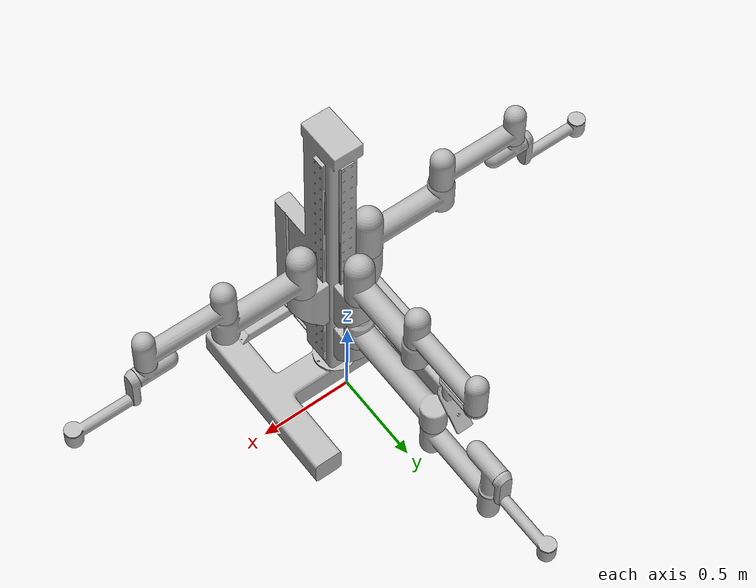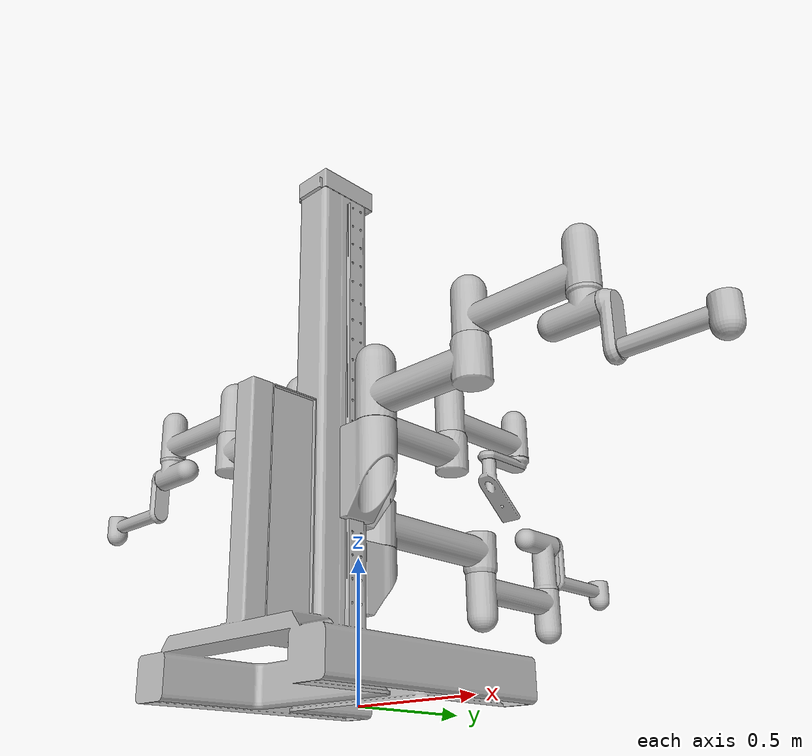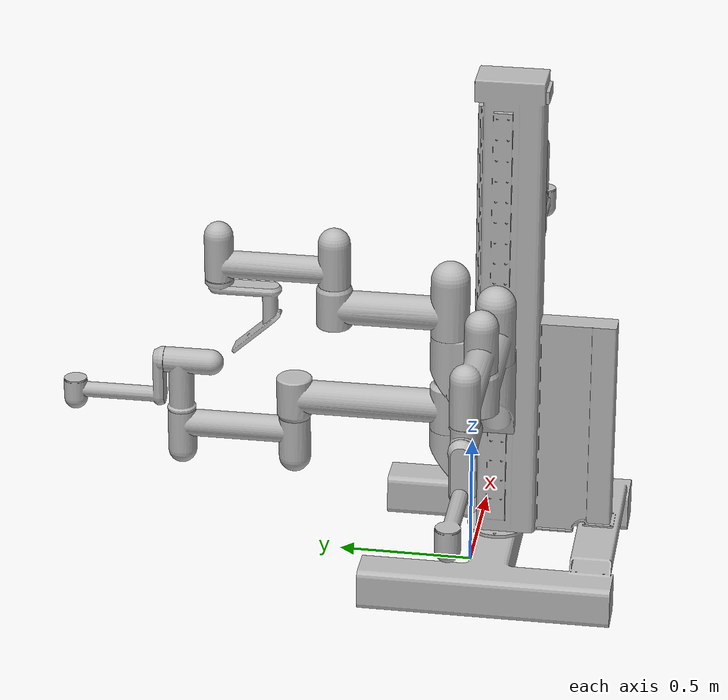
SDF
<sdf version='1.6'>
  <model name='suj'>
    <link name='base_link'>
      <pose>0 0 0.167458 0 -0 0</pose>
      <inertial>
        <pose>3.41426e-07 -0.163433 0.552458 0 -0 0</pose>
        <mass>251.331</mass>
        <inertia>
          <ixx>116.092</ixx>
          <ixy>-5.29792e-06</ixy>
          <ixz>3.94602e-05</ixz>
          <iyy>116.786</iyy>
          <iyz>-2.7945</iyz>
          <izz>20.7205</izz>
        </inertia>
      </inertial>
      <collision name='base_link_collision'>
        <pose>0 0 0 0 -0 0</pose>
        <geometry>
          <mesh>
            <scale>1 1 1</scale>
            <uri>model://cart/meshes/base_link.STL</uri>
          </mesh>
        </geometry>
      </collision>
      <visual name='base_link_visual'>
        <pose>0 0 0 0 -0 0</pose>
        <geometry>
          <mesh>
            <scale>1 1 1</scale>
            <uri>model://cart/meshes/base_link.STL</uri>
          </mesh>
        </geometry>
      </visual>
      <velocity_decay>
        <linear>0</linear>
        <angular>0</angular>
      </velocity_decay>
    </link>
    <joint name='base_joint' type='fixed'>
      <child>base_link</child>
      <parent>world</parent>
    </joint>
    <link name='suj_psm2_L0'>
      <pose>0.1912 -0.1016 0.928558 -3.14159 -0 3.14159</pose>
      <inertial>
        <pose>0.05684 4.20187e-07 0.148467 0 -0 0</pose>
        <mass>8.19045</mass>
        <inertia>
          <ixx>0.0849399</ixx>
          <ixy>-2.62415e-07</ixy>
          <ixz>-0.00950409</ixz>
          <iyy>0.0840388</iyy>
          <iyz>-7.34497e-07</iyz>
          <izz>0.0337579</izz>
        </inertia>
      </inertial>
      <collision name='suj_psm2_L0_collision'>
        <pose>0 0 0 0 -0 0</pose>
        <geometry>
          <mesh>
            <scale>1 1 1</scale>
            <uri>model://cart/meshes/suj_psm2_L0.STL</uri>
          </mesh>
        </geometry>
      </collision>
      <visual name='suj_psm2_L0_visual'>
        <pose>0 0 0 0 -0 0</pose>
        <geometry>
          <mesh>
            <scale>1 1 1</scale>
            <uri>model://cart/meshes/suj_psm2_L0.STL</uri>
          </mesh>
        </geometry>
      </visual>
      <velocity_decay>
        <linear>0</linear>
        <angular>0</angular>
      </velocity_decay>
    </link>
    <joint name='suj_psm2_J0' type='prismatic'>
      <child>suj_psm2_L0</child>
      <parent>base_link</parent>
      <axis>
        <xyz>0 0 -1</xyz>
        <limit>
          <lower>-0.3798</lower>
          <upper>0.8425</upper>
          <effort>5000</effort>
          <velocity>50</velocity>
        </limit>
        <dynamics>
          <damping>0.2</damping>
        </dynamics>
      </axis>
    </joint>
    <link name='suj_psm2_L1'>
      <pose>0.1912 -0.1016 0.928558 3.14159 3.23109e-15 1.5708</pose>
      <inertial>
        <pose>-2.39047e-06 0.181423 -0.108874 0 -0 0</pose>
        <mass>4.28515</mass>
        <inertia>
          <ixx>0.165299</ixx>
          <ixy>8.05521e-07</ixy>
          <ixz>1.12357e-07</ixz>
          <iyy>0.0318879</iyy>
          <iyz>-0.0216382</iyz>
          <izz>0.151812</izz>
        </inertia>
      </inertial>
      <collision name='suj_psm2_L1_collision'>
        <pose>0 0 0 0 -0 0</pose>
        <geometry>
          <mesh>
            <scale>1 1 1</scale>
            <uri>model://cart/meshes/suj_psm2_L1.STL</uri>
          </mesh>
        </geometry>
      </collision>
      <visual name='suj_psm2_L1_visual'>
        <pose>0 0 0 0 -0 0</pose>
        <geometry>
          <mesh>
            <scale>1 1 1</scale>
            <uri>model://cart/meshes/suj_psm2_L1.STL</uri>
          </mesh>
        </geometry>
      </visual>
      <velocity_decay>
        <linear>0</linear>
        <angular>0</angular>
      </velocity_decay>
    </link>
    <joint name='suj_psm2_J1' type='revolute'>
      <child>suj_psm2_L1</child>
      <parent>suj_psm2_L0</parent>
      <axis>
        <xyz>1.0058e-29 3.23109e-15 1</xyz>
        <limit>
          <lower>-3.14159</lower>
          <upper>3.14159</upper>
        </limit>
        <dynamics/>
      </axis>
    </joint>
    <link name='suj_psm2_L2'>
      <pose>0.623 -0.1016 1.09981 -6.46218e-15 -2.33033e-29 -1.03251e-14</pose>
      <inertial>
        <pose>0.20892 -5.98682e-06 0.0907666 0 -0 0</pose>
        <mass>3.37391</mass>
        <inertia>
          <ixx>0.0170496</ixx>
          <ixy>1.14494e-06</ixy>
          <ixz>0.00102556</ixz>
          <iyy>0.122648</iyy>
          <iyz>-5.47957e-07</iyz>
          <izz>0.11478</izz>
        </inertia>
      </inertial>
      <collision name='suj_psm2_L2_collision'>
        <pose>0 0 0 0 -0 0</pose>
        <geometry>
          <mesh>
            <scale>1 1 1</scale>
            <uri>model://cart/meshes/suj_psm2_L2.STL</uri>
          </mesh>
        </geometry>
      </collision>
      <visual name='suj_psm2_L2_visual'>
        <pose>0 0 0 0 -0 0</pose>
        <geometry>
          <mesh>
            <scale>1 1 1</scale>
            <uri>model://cart/meshes/suj_psm2_L2.STL</uri>
          </mesh>
        </geometry>
      </visual>
      <velocity_decay>
        <linear>0</linear>
        <angular>0</angular>
      </velocity_decay>
    </link>
    <joint name='suj_psm2_J2' type='revolute'>
      <child>suj_psm2_L2</child>
      <parent>suj_psm2_L1</parent>
      <axis>
        <xyz>4.34192e-29 6.46218e-15 1</xyz>
        <limit>
          <lower>-3.14159</lower>
          <upper>3.14159</upper>
        </limit>
        <dynamics>
          <damping>0.2</damping>
        </dynamics>
      </axis>
    </joint>
    <link name='suj_psm2_L3'>
      <pose>1.0548 -0.1016 1.09981 -1.5708 -6.66134e-15 -1.5708</pose>
      <inertial>
        <pose>-7.80457e-07 0.0671938 -0.0457966 0 -0 0</pose>
        <mass>0.955411</mass>
        <inertia>
          <ixx>0.0050224</ixx>
          <ixy>1.37715e-08</ixy>
          <ixz>6.06907e-08</ixz>
          <iyy>0.00485367</iyy>
          <iyz>0.000256157</iyz>
          <izz>0.00220603</izz>
        </inertia>
      </inertial>
      <collision name='suj_psm2_L3_collision'>
        <pose>0 0 0 0 -0 0</pose>
        <geometry>
          <mesh>
            <scale>1 1 1</scale>
            <uri>model://cart/meshes/suj_psm2_L3.STL</uri>
          </mesh>
        </geometry>
      </collision>
      <visual name='suj_psm2_L3_visual'>
        <pose>0 0 0 0 -0 0</pose>
        <geometry>
          <mesh>
            <scale>1 1 1</scale>
            <uri>model://cart/meshes/suj_psm2_L3.STL</uri>
          </mesh>
        </geometry>
      </visual>
      <velocity_decay>
        <linear>0</linear>
        <angular>0</angular>
      </velocity_decay>
    </link>
    <joint name='suj_psm2_J3' type='revolute'>
      <child>suj_psm2_L3</child>
      <parent>suj_psm2_L2</parent>
      <axis>
        <xyz>0 1 0</xyz>
        <limit>
          <lower>-3.14159</lower>
          <upper>3.14159</upper>
        </limit>
        <dynamics>
          <damping>0.2</damping>
        </dynamics>
      </axis>
    </joint>
    <link name='suj_psm2_L4'>
      <pose>1.1158 -0.1016 1.02676 -3.14159 9.85853e-15 1.5708</pose>
      <inertial>
        <pose>4.48122e-08 0.13369 0.106531 0 -0 0</pose>
        <mass>3.17073</mass>
        <inertia>
          <ixx>0.0814805</ixx>
          <ixy>-2.272e-08</ixy>
          <ixz>-1.15333e-09</ixz>
          <iyy>0.0179293</iyy>
          <iyz>-0.0218807</iyz>
          <izz>0.0668099</izz>
        </inertia>
      </inertial>
      <collision name='suj_psm2_L4_collision'>
        <pose>0 0 0 0 -0 0</pose>
        <geometry>
          <mesh>
            <scale>1 1 1</scale>
            <uri>model://cart/meshes/suj_psm2_L4.STL</uri>
          </mesh>
        </geometry>
      </collision>
      <visual name='suj_psm2_L4_visual'>
        <pose>0 0 0 0 -0 0</pose>
        <geometry>
          <mesh>
            <scale>1 1 1</scale>
            <uri>model://cart/meshes/suj_psm2_L4.STL</uri>
          </mesh>
        </geometry>
      </visual>
      <velocity_decay>
        <linear>0</linear>
        <angular>0</angular>
      </velocity_decay>
    </link>
    <joint name='suj_psm2_J4' type='revolute'>
      <child>suj_psm2_L4</child>
      <parent>suj_psm2_L3</parent>
      <axis>
        <xyz>0 1 0</xyz>
        <limit>
          <lower>-3.14159</lower>
          <upper>3.14159</upper>
        </limit>
        <dynamics>
          <damping>0.2</damping>
        </dynamics>
      </axis>
    </joint>
    <link name='suj_ecm_L0'>
      <pose>0 0.0896 0.928558 3.14159 -3.41872e-16 -1.5708</pose>
      <inertial>
        <pose>0.05684 4.20187e-07 0.148467 0 -0 0</pose>
        <mass>8.19045</mass>
        <inertia>
          <ixx>0.0849399</ixx>
          <ixy>-2.62415e-07</ixy>
          <ixz>-0.00950409</ixz>
          <iyy>0.0840388</iyy>
          <iyz>-7.34497e-07</iyz>
          <izz>0.0337579</izz>
        </inertia>
      </inertial>
      <collision name='suj_ecm_L0_collision'>
        <pose>0 0 0 0 -0 0</pose>
        <geometry>
          <mesh>
            <scale>1 1 1</scale>
            <uri>model://cart/meshes/suj_ecm_L0.STL</uri>
          </mesh>
        </geometry>
      </collision>
      <visual name='suj_ecm_L0_visual'>
        <pose>0 0 0 0 -0 0</pose>
        <geometry>
          <mesh>
            <scale>1 1 1</scale>
            <uri>model://cart/meshes/suj_ecm_L0.STL</uri>
          </mesh>
        </geometry>
      </visual>
      <velocity_decay>
        <linear>0</linear>
        <angular>0</angular>
      </velocity_decay>
    </link>
    <joint name='suj_ecm_J0' type='prismatic'>
      <child>suj_ecm_L0</child>
      <parent>base_link</parent>
      <axis>
        <xyz>0 0 -1</xyz>
        <limit>
          <lower>-0.3798</lower>
          <upper>0.8425</upper>
          <effort>5000</effort>
          <velocity>50</velocity>
        </limit>
        <dynamics>
          <damping>0.2</damping>
        </dynamics>
      </axis>
    </joint>
    <link name='suj_ecm_L1'>
      <pose>0 0.0896 0.928558 -2.88922e-15 -3.23109e-15 3.14159</pose>
      <inertial>
        <pose>-2.39047e-06 -0.181423 0.108874 0 -0 0</pose>
        <mass>4.28515</mass>
        <inertia>
          <ixx>0.165299</ixx>
          <ixy>-8.05521e-07</ixy>
          <ixz>-1.12357e-07</ixz>
          <iyy>0.0318879</iyy>
          <iyz>-0.0216382</iyz>
          <izz>0.151812</izz>
        </inertia>
      </inertial>
      <collision name='suj_ecm_L1_collision'>
        <pose>0 0 0 0 -0 0</pose>
        <geometry>
          <mesh>
            <scale>1 1 1</scale>
            <uri>model://cart/meshes/suj_ecm_L1.STL</uri>
          </mesh>
        </geometry>
      </collision>
      <visual name='suj_ecm_L1_visual'>
        <pose>0 0 0 0 -0 0</pose>
        <geometry>
          <mesh>
            <scale>1 1 1</scale>
            <uri>model://cart/meshes/suj_ecm_L1.STL</uri>
          </mesh>
        </geometry>
      </visual>
      <velocity_decay>
        <linear>0</linear>
        <angular>0</angular>
      </velocity_decay>
    </link>
    <joint name='suj_ecm_J1' type='revolute'>
      <child>suj_ecm_L1</child>
      <parent>suj_ecm_L0</parent>
      <axis>
        <xyz>3.23109e-15 -2.88922e-15 1</xyz>
        <limit>
          <lower>-3.14159</lower>
          <upper>3.14159</upper>
        </limit>
        <dynamics>
          <damping>0.2</damping>
        </dynamics>
      </axis>
    </joint>
    <link name='suj_ecm_L2'>
      <pose>3.66939e-15 0.5214 1.09981 -3.14159 -2.88922e-15 1.5708</pose>
      <inertial>
        <pose>0.20892 5.98682e-06 -0.0907666 0 -0 0</pose>
        <mass>3.37391</mass>
        <inertia>
          <ixx>0.0170496</ixx>
          <ixy>-1.14494e-06</ixy>
          <ixz>-0.00102556</ixz>
          <iyy>0.122648</iyy>
          <iyz>-5.47957e-07</iyz>
          <izz>0.11478</izz>
        </inertia>
      </inertial>
      <collision name='suj_ecm_L2_collision'>
        <pose>0 0 0 0 -0 0</pose>
        <geometry>
          <mesh>
            <scale>1 1 1</scale>
            <uri>model://cart/meshes/suj_ecm_L2.STL</uri>
          </mesh>
        </geometry>
      </collision>
      <visual name='suj_ecm_L2_visual'>
        <pose>0 0 0 0 -0 0</pose>
        <geometry>
          <mesh>
            <scale>1 1 1</scale>
            <uri>model://cart/meshes/suj_ecm_L2.STL</uri>
          </mesh>
        </geometry>
      </visual>
      <velocity_decay>
        <linear>0</linear>
        <angular>0</angular>
      </velocity_decay>
    </link>
    <joint name='suj_ecm_J2' type='revolute'>
      <child>suj_ecm_L2</child>
      <parent>suj_ecm_L1</parent>
      <axis>
        <xyz>-2.18909e-29 -2.88922e-15 1</xyz>
        <limit>
          <lower>-3.14159</lower>
          <upper>3.14159</upper>
        </limit>
        <dynamics>
          <damping>0.2</damping>
        </dynamics>
      </axis>
    </joint>
    <link name='suj_ecm_L3'>
      <pose>8.31437e-15 0.9532 1.04781 -1.5708 2.94209e-15 -1.5708</pose>
      <inertial>
        <pose>0.101751 0.0259124 -9.327e-08 0 -0 0</pose>
        <mass>3.45916</mass>
        <inertia>
          <ixx>0.0229633</ixx>
          <ixy>-0.0059561</ixy>
          <ixz>3.34205e-08</ixz>
          <iyy>0.0229722</iyy>
          <iyz>2.42316e-08</iyz>
          <izz>0.0422114</izz>
        </inertia>
      </inertial>
      <collision name='suj_ecm_L3_collision'>
        <pose>0 0 0 0 -0 0</pose>
        <geometry>
          <mesh>
            <scale>1 1 1</scale>
            <uri>model://cart/meshes/suj_ecm_L3.STL</uri>
          </mesh>
        </geometry>
      </collision>
      <visual name='suj_ecm_L3_visual'>
        <pose>0 0 0 0 -0 0</pose>
        <geometry>
          <mesh>
            <scale>1 1 1</scale>
            <uri>model://cart/meshes/suj_ecm_L3.STL</uri>
          </mesh>
        </geometry>
      </visual>
      <velocity_decay>
        <linear>0</linear>
        <angular>0</angular>
      </velocity_decay>
    </link>
    <joint name='suj_ecm_J3' type='revolute'>
      <child>suj_ecm_L3</child>
      <parent>suj_ecm_L2</parent>
      <axis>
        <xyz>0 1 0</xyz>
        <limit>
          <lower>-3.14159</lower>
          <upper>3.14159</upper>
        </limit>
        <dynamics>
          <damping>0.2</damping>
        </dynamics>
      </axis>
    </joint>
    <link name='suj_psm3_L0'>
      <pose>0 0.0896 0.548758 3.14159 -3.41872e-16 -1.5708</pose>
      <inertial>
        <pose>0.060211 -2.92607e-07 0.1132 0 -0 0</pose>
        <mass>6.04817</mass>
        <inertia>
          <ixx>0.0427518</ixx>
          <ixy>-6.0601e-07</ixy>
          <ixz>-0.00566678</ixz>
          <iyy>0.0405</iyy>
          <iyz>-5.59951e-07</iyz>
          <izz>0.0232273</izz>
        </inertia>
      </inertial>
      <collision name='suj_psm3_L0_collision'>
        <pose>0 0 0 0 -0 0</pose>
        <geometry>
          <mesh>
            <scale>1 1 1</scale>
            <uri>model://cart/meshes/suj_psm3_L0.STL</uri>
          </mesh>
        </geometry>
      </collision>
      <visual name='suj_psm3_L0_visual'>
        <pose>0 0 0 0 -0 0</pose>
        <geometry>
          <mesh>
            <scale>1 1 1</scale>
            <uri>model://cart/meshes/suj_psm3_L0.STL</uri>
          </mesh>
        </geometry>
      </visual>
      <velocity_decay>
        <linear>0</linear>
        <angular>0</angular>
      </velocity_decay>
    </link>
    <joint name='suj_psm3_J0' type='prismatic'>
      <child>suj_psm3_L0</child>
      <parent>base_link</parent>
      <axis>
        <xyz>0 0 -1</xyz>
        <limit>
          <lower>0</lower>
          <upper>1.2223</upper>
          <effort>5000</effort>
          <velocity>50</velocity>
        </limit>
        <dynamics>
          <damping>0.2</damping>
        </dynamics>
      </axis>
    </joint>
    <link name='suj_psm3_L1'>
      <pose>0 0.0896 0.548758 -2.88922e-15 -3.23109e-15 3.14159</pose>
      <inertial>
        <pose>-8.83879e-07 -0.269227 0.0974465 0 -0 0</pose>
        <mass>9.21434</mass>
        <inertia>
          <ixx>0.512543</ixx>
          <ixy>-1.12853e-06</ixy>
          <ixz>-1.98944e-07</ixz>
          <iyy>0.0466755</iyy>
          <iyz>-0.0223247</iyz>
          <izz>0.500776</izz>
        </inertia>
      </inertial>
      <collision name='suj_psm3_L1_collision'>
        <pose>0 0 0 0 -0 0</pose>
        <geometry>
          <mesh>
            <scale>1 1 1</scale>
            <uri>model://cart/meshes/suj_psm3_L1.STL</uri>
          </mesh>
        </geometry>
      </collision>
      <visual name='suj_psm3_L1_visual'>
        <pose>0 0 0 0 -0 0</pose>
        <geometry>
          <mesh>
            <scale>1 1 1</scale>
            <uri>model://cart/meshes/suj_psm3_L1.STL</uri>
          </mesh>
        </geometry>
      </visual>
      <velocity_decay>
        <linear>0</linear>
        <angular>0</angular>
      </velocity_decay>
    </link>
    <joint name='suj_psm3_J1' type='revolute'>
      <child>suj_psm3_L1</child>
      <parent>suj_psm3_L0</parent>
      <axis>
        <xyz>0 0 1</xyz>
        <limit>
          <lower>-3.14159</lower>
          <upper>3.14159</upper>
        </limit>
        <dynamics>
          <damping>0.2</damping>
        </dynamics>
      </axis>
    </joint>
    <link name='suj_psm3_L2'>
      <pose>4.21504e-15 0.6738 0.548508 -3.14159 -2.88922e-15 1.5708</pose>
      <inertial>
        <pose>0.20892 -5.98682e-06 0.0907666 0 -0 0</pose>
        <mass>3.37391</mass>
        <inertia>
          <ixx>0.0170496</ixx>
          <ixy>1.14494e-06</ixy>
          <ixz>0.00102556</ixz>
          <iyy>0.122648</iyy>
          <iyz>-5.47957e-07</iyz>
          <izz>0.11478</izz>
        </inertia>
      </inertial>
      <collision name='suj_psm3_L2_collision'>
        <pose>0 0 0 0 -0 0</pose>
        <geometry>
          <mesh>
            <scale>1 1 1</scale>
            <uri>model://cart/meshes/suj_psm3_L2.STL</uri>
          </mesh>
        </geometry>
      </collision>
      <visual name='suj_psm3_L2_visual'>
        <pose>0 0 0 0 -0 0</pose>
        <geometry>
          <mesh>
            <scale>1 1 1</scale>
            <uri>model://cart/meshes/suj_psm3_L2.STL</uri>
          </mesh>
        </geometry>
      </visual>
      <velocity_decay>
        <linear>0</linear>
        <angular>0</angular>
      </velocity_decay>
    </link>
    <joint name='suj_psm3_J2' type='revolute'>
      <child>suj_psm3_L2</child>
      <parent>suj_psm3_L1</parent>
      <axis>
        <xyz>0 0 1</xyz>
        <limit>
          <lower>-3.14159</lower>
          <upper>3.14159</upper>
        </limit>
        <dynamics/>
      </axis>
    </joint>
    <link name='suj_psm3_L3'>
      <pose>8.90573e-15 1.1056 0.548508 -1.5708 3.15253e-17 3.14159</pose>
      <inertial>
        <pose>-5.52738e-07 -0.14737 0.0299587 0 -0 0</pose>
        <mass>1.46017</mass>
        <inertia>
          <ixx>0.0128891</ixx>
          <ixy>-1.05508e-07</ixy>
          <ixz>2.68237e-08</ixz>
          <iyy>0.00658385</iyy>
          <iyz>0.00230089</iyz>
          <izz>0.00938096</izz>
        </inertia>
      </inertial>
      <collision name='suj_psm3_L3_collision'>
        <pose>0 0 0 0 -0 0</pose>
        <geometry>
          <mesh>
            <scale>1 1 1</scale>
            <uri>model://cart/meshes/suj_psm3_L3.STL</uri>
          </mesh>
        </geometry>
      </collision>
      <visual name='suj_psm3_L3_visual'>
        <pose>0 0 0 0 -0 0</pose>
        <geometry>
          <mesh>
            <scale>1 1 1</scale>
            <uri>model://cart/meshes/suj_psm3_L3.STL</uri>
          </mesh>
        </geometry>
      </visual>
      <velocity_decay>
        <linear>0</linear>
        <angular>0</angular>
      </velocity_decay>
    </link>
    <joint name='suj_psm3_J3' type='revolute'>
      <child>suj_psm3_L3</child>
      <parent>suj_psm3_L2</parent>
      <axis>
        <xyz>0 1 0</xyz>
        <limit>
          <lower>-3.14159</lower>
          <upper>3.14159</upper>
        </limit>
        <dynamics>
          <damping>0.2</damping>
        </dynamics>
      </axis>
    </joint>
    <link name='suj_psm3_L4'>
      <pose>9.34e-15 1.1666 0.748458 3.14159 3.15253e-17 3.14159</pose>
      <inertial>
        <pose>4.48122e-08 0.13369 0.106531 0 -0 0</pose>
        <mass>3.17073</mass>
        <inertia>
          <ixx>0.0814805</ixx>
          <ixy>-2.272e-08</ixy>
          <ixz>-1.15333e-09</ixz>
          <iyy>0.0179293</iyy>
          <iyz>-0.0218807</iyz>
          <izz>0.0668099</izz>
        </inertia>
      </inertial>
      <collision name='suj_psm3_L4_collision'>
        <pose>0 0 0 0 -0 0</pose>
        <geometry>
          <mesh>
            <scale>1 1 1</scale>
            <uri>model://cart/meshes/suj_psm3_L4.STL</uri>
          </mesh>
        </geometry>
      </collision>
      <visual name='suj_psm3_L4_visual'>
        <pose>0 0 0 0 -0 0</pose>
        <geometry>
          <mesh>
            <scale>1 1 1</scale>
            <uri>model://cart/meshes/suj_psm3_L4.STL</uri>
          </mesh>
        </geometry>
      </visual>
      <velocity_decay>
        <linear>0</linear>
        <angular>0</angular>
      </velocity_decay>
    </link>
    <joint name='suj_psm3_J4' type='revolute'>
      <child>suj_psm3_L4</child>
      <parent>suj_psm3_L3</parent>
      <axis>
        <xyz>0 -1 0</xyz>
        <limit>
          <lower>-3.14159</lower>
          <upper>3.14159</upper>
        </limit>
        <dynamics>
          <damping>0.2</damping>
        </dynamics>
      </axis>
    </joint>
    <link name='suj_psm1_L0'>
      <pose>-0.1912 -0.1016 0.928558 3.14159 -0 0</pose>
      <inertial>
        <pose>0.05684 4.20187e-07 0.148467 0 -0 0</pose>
        <mass>8.19045</mass>
        <inertia>
          <ixx>0.0849399</ixx>
          <ixy>-2.62415e-07</ixy>
          <ixz>-0.00950409</ixz>
          <iyy>0.0840388</iyy>
          <iyz>-7.34497e-07</iyz>
          <izz>0.0337579</izz>
        </inertia>
      </inertial>
      <collision name='suj_psm1_L0_collision'>
        <pose>0 0 0 0 -0 0</pose>
        <geometry>
          <mesh>
            <scale>1 1 1</scale>
            <uri>model://cart/meshes/suj_psm1_L0.STL</uri>
          </mesh>
        </geometry>
      </collision>
      <visual name='suj_psm1_L0_visual'>
        <pose>0 0 0 0 -0 0</pose>
        <geometry>
          <mesh>
            <scale>1 1 1</scale>
            <uri>model://cart/meshes/suj_psm1_L0.STL</uri>
          </mesh>
        </geometry>
      </visual>
      <velocity_decay>
        <linear>0</linear>
        <angular>0</angular>
      </velocity_decay>
    </link>
    <joint name='suj_psm1_J0' type='prismatic'>
      <child>suj_psm1_L0</child>
      <parent>base_link</parent>
      <axis>
        <xyz>0 0 -1</xyz>
        <limit>
          <lower>-0.3798</lower>
          <upper>0.8425</upper>
          <effort>5000</effort>
          <velocity>50</velocity>
        </limit>
        <dynamics>
          <damping>0.2</damping>
        </dynamics>
      </axis>
    </joint>
    <link name='suj_psm1_L1'>
      <pose>-0.1912 -0.1016 0.928558 -3.14159 -3.23109e-15 -1.5708</pose>
      <inertial>
        <pose>-2.39047e-06 0.181423 -0.108874 0 -0 0</pose>
        <mass>4.28515</mass>
        <inertia>
          <ixx>0.165299</ixx>
          <ixy>8.05521e-07</ixy>
          <ixz>1.12357e-07</ixz>
          <iyy>0.0318879</iyy>
          <iyz>-0.0216382</iyz>
          <izz>0.151812</izz>
        </inertia>
      </inertial>
      <collision name='suj_psm1_L1_collision'>
        <pose>0 0 0 0 -0 0</pose>
        <geometry>
          <mesh>
            <scale>1 1 1</scale>
            <uri>model://cart/meshes/suj_psm1_L1.STL</uri>
          </mesh>
        </geometry>
      </collision>
      <visual name='suj_psm1_L1_visual'>
        <pose>0 0 0 0 -0 0</pose>
        <geometry>
          <mesh>
            <scale>1 1 1</scale>
            <uri>model://cart/meshes/suj_psm1_L1.STL</uri>
          </mesh>
        </geometry>
      </visual>
      <velocity_decay>
        <linear>0</linear>
        <angular>0</angular>
      </velocity_decay>
    </link>
    <joint name='suj_psm1_J1' type='revolute'>
      <child>suj_psm1_L1</child>
      <parent>suj_psm1_L0</parent>
      <axis>
        <xyz>0 0 1</xyz>
        <limit>
          <lower>-3.14159</lower>
          <upper>3.14159</upper>
        </limit>
        <dynamics>
          <damping>0.2</damping>
        </dynamics>
      </axis>
    </joint>
    <link name='suj_psm1_L2'>
      <pose>-0.623 -0.1016 1.09981 -8.53916e-44 2.36658e-29 3.14159</pose>
      <inertial>
        <pose>0.20892 -5.98682e-06 0.0907666 0 -0 0</pose>
        <mass>3.37391</mass>
        <inertia>
          <ixx>0.0170496</ixx>
          <ixy>1.14494e-06</ixy>
          <ixz>0.00102556</ixz>
          <iyy>0.122648</iyy>
          <iyz>-5.47957e-07</iyz>
          <izz>0.11478</izz>
        </inertia>
      </inertial>
      <collision name='suj_psm1_L2_collision'>
        <pose>0 0 0 0 -0 0</pose>
        <geometry>
          <mesh>
            <scale>1 1 1</scale>
            <uri>model://cart/meshes/suj_psm1_L2.STL</uri>
          </mesh>
        </geometry>
      </collision>
      <visual name='suj_psm1_L2_visual'>
        <pose>0 0 0 0 -0 0</pose>
        <geometry>
          <mesh>
            <scale>1 1 1</scale>
            <uri>model://cart/meshes/suj_psm1_L2.STL</uri>
          </mesh>
        </geometry>
      </visual>
      <velocity_decay>
        <linear>0</linear>
        <angular>0</angular>
      </velocity_decay>
    </link>
    <joint name='suj_psm1_J2' type='revolute'>
      <child>suj_psm1_L2</child>
      <parent>suj_psm1_L1</parent>
      <axis>
        <xyz>0 0 1</xyz>
        <limit>
          <lower>-3.14159</lower>
          <upper>3.14159</upper>
        </limit>
        <dynamics>
          <damping>0.2</damping>
        </dynamics>
      </axis>
    </joint>
    <link name='suj_psm1_L3'>
      <pose>-1.0548 -0.1016 1.09981 1.5708 -5.55112e-17 1.5708</pose>
      <inertial>
        <pose>-7.80457e-07 -0.0671938 0.0457966 0 -0 0</pose>
        <mass>0.955411</mass>
        <inertia>
          <ixx>0.0050224</ixx>
          <ixy>-1.37715e-08</ixy>
          <ixz>-6.06907e-08</ixz>
          <iyy>0.00485367</iyy>
          <iyz>0.000256157</iyz>
          <izz>0.00220603</izz>
        </inertia>
      </inertial>
      <collision name='suj_psm1_L3_collision'>
        <pose>0 0 0 0 -0 0</pose>
        <geometry>
          <mesh>
            <scale>1 1 1</scale>
            <uri>model://cart/meshes/suj_psm1_L3.STL</uri>
          </mesh>
        </geometry>
      </collision>
      <visual name='suj_psm1_L3_visual'>
        <pose>0 0 0 0 -0 0</pose>
        <geometry>
          <mesh>
            <scale>1 1 1</scale>
            <uri>model://cart/meshes/suj_psm1_L3.STL</uri>
          </mesh>
        </geometry>
      </visual>
      <velocity_decay>
        <linear>0</linear>
        <angular>0</angular>
      </velocity_decay>
    </link>
    <joint name='suj_psm1_J3' type='revolute'>
      <child>suj_psm1_L3</child>
      <parent>suj_psm1_L2</parent>
      <axis>
        <xyz>0 1 0</xyz>
        <limit>
          <lower>-3.14159</lower>
          <upper>3.14159</upper>
        </limit>
        <dynamics>
          <damping>0.2</damping>
        </dynamics>
      </axis>
    </joint>
    <link name='suj_psm1_L4'>
      <pose>-1.1158 -0.1016 1.02676 3.14159 -3.34265e-15 -1.5708</pose>
      <inertial>
        <pose>4.48122e-08 0.13369 0.106531 0 -0 0</pose>
        <mass>3.17073</mass>
        <inertia>
          <ixx>0.0814805</ixx>
          <ixy>-2.272e-08</ixy>
          <ixz>-1.15333e-09</ixz>
          <iyy>0.0179293</iyy>
          <iyz>-0.0218807</iyz>
          <izz>0.0668099</izz>
        </inertia>
      </inertial>
      <collision name='suj_psm1_L4_collision'>
        <pose>0 0 0 0 -0 0</pose>
        <geometry>
          <mesh>
            <scale>1 1 1</scale>
            <uri>model://cart/meshes/suj_psm1_L4.STL</uri>
          </mesh>
        </geometry>
      </collision>
      <visual name='suj_psm1_L4_visual'>
        <pose>0 0 0 0 -0 0</pose>
        <geometry>
          <mesh>
            <scale>1 1 1</scale>
            <uri>model://cart/meshes/suj_psm1_L4.STL</uri>
          </mesh>
        </geometry>
      </visual>
      <velocity_decay>
        <linear>0</linear>
        <angular>0</angular>
      </velocity_decay>
    </link>
    <joint name='suj_psm1_J4' type='revolute'>
      <child>suj_psm1_L4</child>
      <parent>suj_psm1_L3</parent>
      <axis>
        <xyz>0 1 0</xyz>
        <limit>
          <lower>-3.14159</lower>
          <upper>3.14159</upper>
        </limit>
        <dynamics>
          <damping>0.2</damping>
        </dynamics>
      </axis>
    </joint>

    <static>0</static>
    <plugin name='dvrk_plugins' filename='libdvrk_plugins.so'/>
  </model>
</sdf>
